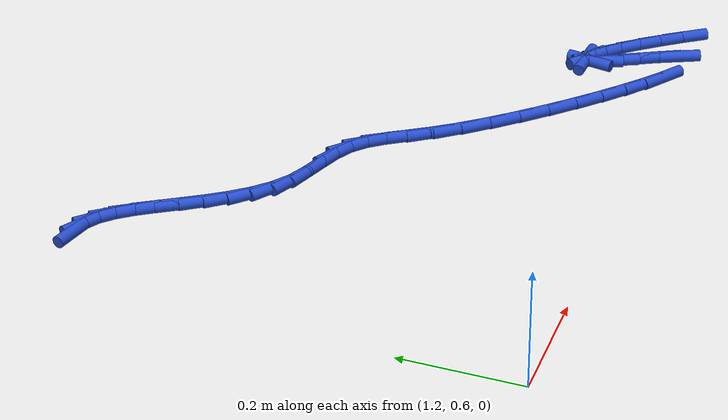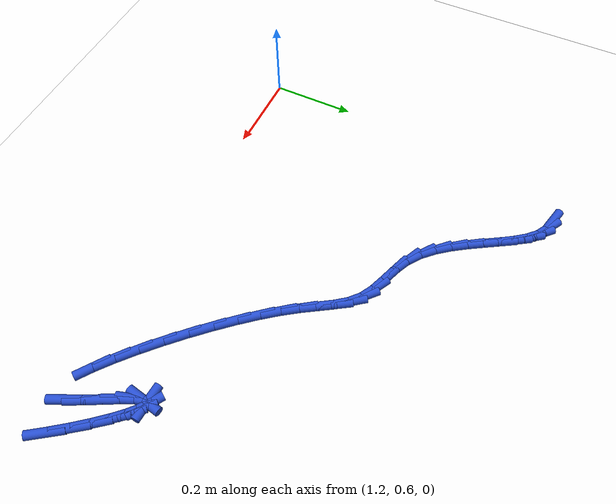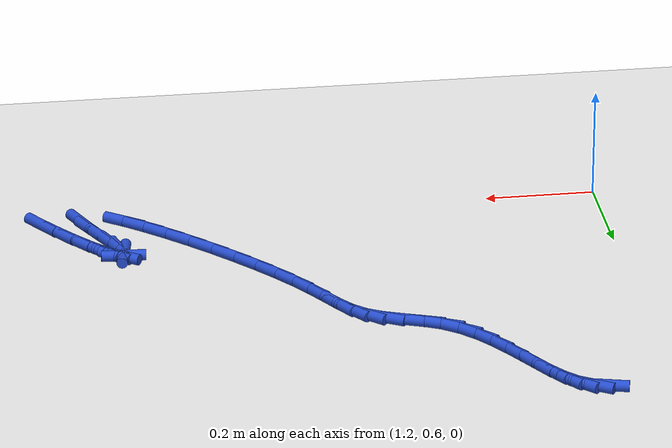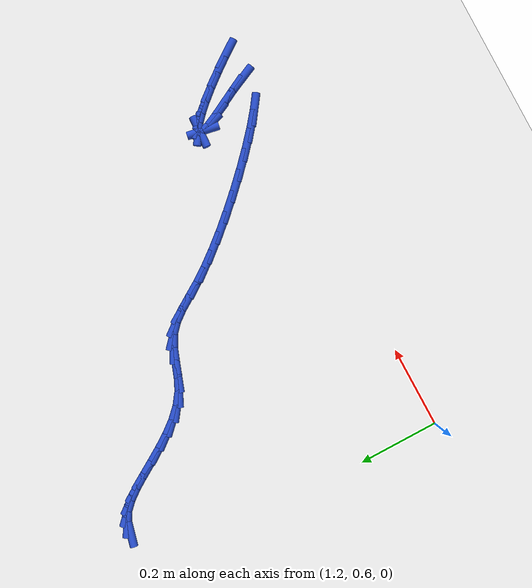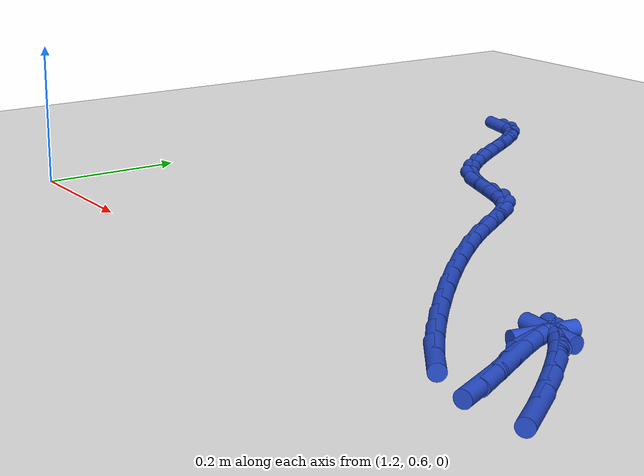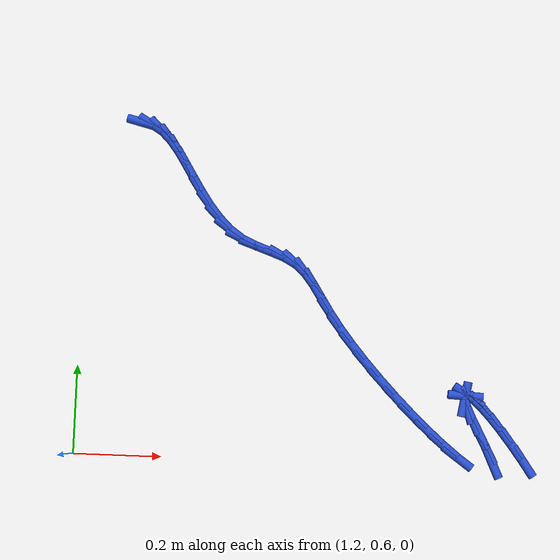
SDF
<sdf version="1.6">
 <world name="default">
  <model name="ground_plane">
   <static>1</static>
   <link name="link">
    <collision name="collision">
     <geometry><plane><normal>0 0 1</normal><size>100 100</size></plane></geometry>
     <surface><friction><ode><mu>100</mu><mu2>50</mu2></ode></friction></surface>
    </collision>
    <visual name="visual">
     <cast_shadows>0</cast_shadows>
     <geometry><plane><normal>0 0 1</normal><size>100 100</size></plane></geometry>
     <material>
      <script><uri>file://media/materials/scripts/gazebo.material</uri><name>Gazebo/WhiteGlow</name></script>
     </material>
    </visual>
   </link>
  </model>
  <model name="line">
   <link name="link_65">
    <pose>1.3244889722268902 1.3648149358747712 0.01 0 1.57 -0.24948968640286232</pose>
    <collision name="collision">
     <geometry><cylinder><radius>0.01</radius><length>0.08</length></cylinder></geometry>
    </collision>
    <visual name="visual">
     <material>
      <script><name>Gazebo/Blue</name><uri>file://media/materials/scripts/gazebo.material</uri></script>
     </material>
     <geometry><cylinder><radius>0.01</radius><length>0.08</length></cylinder></geometry>
    </visual>
   </link>
   <link name="link_66">
    <pose>1.3469288046446897 1.359097302339109 0.01 0 1.57 -0.543616779621756</pose>
    <collision name="collision">
     <geometry><cylinder><radius>0.01</radius><length>0.08</length></cylinder></geometry>
    </collision>
    <visual name="visual">
     <material>
      <script><name>Gazebo/Blue</name><uri>file://media/materials/scripts/gazebo.material</uri></script>
     </material>
     <geometry><cylinder><radius>0.01</radius><length>0.08</length></cylinder></geometry>
    </visual>
   </link>
   <link name="link_67">
    <pose>1.36779480778764 1.3464867941120446 0.01 0 1.57 -0.7815544751937383</pose>
    <collision name="collision">
     <geometry><cylinder><radius>0.01</radius><length>0.08</length></cylinder></geometry>
    </collision>
    <visual name="visual">
     <material>
      <script><name>Gazebo/Blue</name><uri>file://media/materials/scripts/gazebo.material</uri></script>
     </material>
     <geometry><cylinder><radius>0.01</radius><length>0.08</length></cylinder></geometry>
    </visual>
   </link>
   <link name="link_68">
    <pose>1.3873310722021572 1.3271001380047598 0.01 0 1.57 -0.9228962749175372</pose>
    <collision name="collision">
     <geometry><cylinder><radius>0.01</radius><length>0.08</length></cylinder></geometry>
    </collision>
    <visual name="visual">
     <material>
      <script><name>Gazebo/Blue</name><uri>file://media/materials/scripts/gazebo.material</uri></script>
     </material>
     <geometry><cylinder><radius>0.01</radius><length>0.08</length></cylinder></geometry>
    </visual>
   </link>
   <link name="link_69">
    <pose>1.406078440249268 1.3023313924187676 0.01 0 1.57 -0.9971311463169636</pose>
    <collision name="collision">
     <geometry><cylinder><radius>0.01</radius><length>0.08</length></cylinder></geometry>
    </collision>
    <visual name="visual">
     <material>
      <script><name>Gazebo/Blue</name><uri>file://media/materials/scripts/gazebo.material</uri></script>
     </material>
     <geometry><cylinder><radius>0.01</radius><length>0.08</length></cylinder></geometry>
    </visual>
   </link>
   <link name="link_70">
    <pose>1.4245994208024282 1.2736678765863927 0.01 0 1.57 -1.0253156294237578</pose>
    <collision name="collision">
     <geometry><cylinder><radius>0.01</radius><length>0.08</length></cylinder></geometry>
    </collision>
    <visual name="visual">
     <material>
      <script><name>Gazebo/Blue</name><uri>file://media/materials/scripts/gazebo.material</uri></script>
     </material>
     <geometry><cylinder><radius>0.01</radius><length>0.08</length></cylinder></geometry>
    </visual>
   </link>
   <link name="link_71">
    <pose>1.443456522735092 1.2425969097399592 0.01 0 1.57 -1.017580651424875</pose>
    <collision name="collision">
     <geometry><cylinder><radius>0.01</radius><length>0.08</length></cylinder></geometry>
    </collision>
    <visual name="visual">
     <material>
      <script><name>Gazebo/Blue</name><uri>file://media/materials/scripts/gazebo.material</uri></script>
     </material>
     <geometry><cylinder><radius>0.01</radius><length>0.08</length></cylinder></geometry>
    </visual>
   </link>
   <link name="link_72">
    <pose>1.4632122549207132 1.2106058111117899 0.01 0 1.57 -0.9769213736126775</pose>
    <collision name="collision">
     <geometry><cylinder><radius>0.01</radius><length>0.08</length></cylinder></geometry>
    </collision>
    <visual name="visual">
     <material>
      <script><name>Gazebo/Blue</name><uri>file://media/materials/scripts/gazebo.material</uri></script>
     </material>
     <geometry><cylinder><radius>0.01</radius><length>0.08</length></cylinder></geometry>
    </visual>
   </link>
   <link name="link_73">
    <pose>1.4844291262327463 1.1791818999342094 0.01 0 1.57 -0.9013721528112686</pose>
    <collision name="collision">
     <geometry><cylinder><radius>0.01</radius><length>0.08</length></cylinder></geometry>
    </collision>
    <visual name="visual">
     <material>
      <script><name>Gazebo/Blue</name><uri>file://media/materials/scripts/gazebo.material</uri></script>
     </material>
     <geometry><cylinder><radius>0.01</radius><length>0.08</length></cylinder></geometry>
    </visual>
   </link>
   <link name="link_74">
    <pose>1.507669645544646 1.1498124954395406 0.01 0 1.57 -0.7854156332886453</pose>
    <collision name="collision">
     <geometry><cylinder><radius>0.01</radius><length>0.08</length></cylinder></geometry>
    </collision>
    <visual name="visual">
     <material>
      <script><name>Gazebo/Blue</name><uri>file://media/materials/scripts/gazebo.material</uri></script>
     </material>
     <geometry><cylinder><radius>0.01</radius><length>0.08</length></cylinder></geometry>
    </visual>
   </link>
   <link name="link_75">
    <pose>1.5334963217298676 1.1239849168601084 0.01 0 1.57 -0.6225711455977114</pose>
    <collision name="collision">
     <geometry><cylinder><radius>0.01</radius><length>0.08</length></cylinder></geometry>
    </collision>
    <visual name="visual">
     <material>
      <script><name>Gazebo/Blue</name><uri>file://media/materials/scripts/gazebo.material</uri></script>
     </material>
     <geometry><cylinder><radius>0.01</radius><length>0.08</length></cylinder></geometry>
    </visual>
   </link>
   <link name="link_76">
    <pose>1.5624716631783515 1.1031864827021176 0.01 0 1.57 -0.43891997333617555</pose>
    <collision name="collision">
     <geometry><cylinder><radius>0.01</radius><length>0.08</length></cylinder></geometry>
    </collision>
    <visual name="visual">
     <material>
      <script><name>Gazebo/Blue</name><uri>file://media/materials/scripts/gazebo.material</uri></script>
     </material>
     <geometry><cylinder><radius>0.01</radius><length>0.08</length></cylinder></geometry>
    </visual>
   </link>
   <link name="link_77">
    <pose>1.5946188676974309 1.0880945982146644 0.01 0 1.57 -0.34250005749897494</pose>
    <collision name="collision">
     <geometry><cylinder><radius>0.01</radius><length>0.08</length></cylinder></geometry>
    </collision>
    <visual name="visual">
     <material>
      <script><name>Gazebo/Blue</name><uri>file://media/materials/scripts/gazebo.material</uri></script>
     </material>
     <geometry><cylinder><radius>0.01</radius><length>0.08</length></cylinder></geometry>
    </visual>
   </link>
   <link name="link_78">
    <pose>1.6278659835233964 1.0762402638331263 0.01 0 1.57 -0.35704056017298813</pose>
    <collision name="collision">
     <geometry><cylinder><radius>0.01</radius><length>0.08</length></cylinder></geometry>
    </collision>
    <visual name="visual">
     <material>
      <script><name>Gazebo/Blue</name><uri>file://media/materials/scripts/gazebo.material</uri></script>
     </material>
     <geometry><cylinder><radius>0.01</radius><length>0.08</length></cylinder></geometry>
    </visual>
   </link>
   <link name="link_79">
    <pose>1.659632350404784 1.0643905236354068 0.01 0 1.57 -0.49813076466831757</pose>
    <collision name="collision">
     <geometry><cylinder><radius>0.01</radius><length>0.08</length></cylinder></geometry>
    </collision>
    <visual name="visual">
     <material>
      <script><name>Gazebo/Blue</name><uri>file://media/materials/scripts/gazebo.material</uri></script>
     </material>
     <geometry><cylinder><radius>0.01</radius><length>0.08</length></cylinder></geometry>
    </visual>
   </link>
   <link name="link_80">
    <pose>1.6873449093801414 1.0493182763352142 0.01 0 1.57 -0.7351223487382783</pose>
    <collision name="collision">
     <geometry><cylinder><radius>0.01</radius><length>0.08</length></cylinder></geometry>
    </collision>
    <visual name="visual">
     <material>
      <script><name>Gazebo/Blue</name><uri>file://media/materials/scripts/gazebo.material</uri></script>
     </material>
     <geometry><cylinder><radius>0.01</radius><length>0.08</length></cylinder></geometry>
    </visual>
   </link>
   <link name="link_81">
    <pose>1.709897689264707 1.0289263952440504 0.01 0 1.57 -0.9151074802155217</pose>
    <collision name="collision">
     <geometry><cylinder><radius>0.01</radius><length>0.08</length></cylinder></geometry>
    </collision>
    <visual name="visual">
     <material>
      <script><name>Gazebo/Blue</name><uri>file://media/materials/scripts/gazebo.material</uri></script>
     </material>
     <geometry><cylinder><radius>0.01</radius><length>0.08</length></cylinder></geometry>
    </visual>
   </link>
   <link name="link_82">
    <pose>1.729389769618927 1.0035863352976855 0.01 0 1.57 -1.001107841980413</pose>
    <collision name="collision">
     <geometry><cylinder><radius>0.01</radius><length>0.08</length></cylinder></geometry>
    </collision>
    <visual name="visual">
     <material>
      <script><name>Gazebo/Blue</name><uri>file://media/materials/scripts/gazebo.material</uri></script>
     </material>
     <geometry><cylinder><radius>0.01</radius><length>0.08</length></cylinder></geometry>
    </visual>
   </link>
   <link name="link_83">
    <pose>1.7483435154016116 0.9739955726525475 0.01 0 1.57 -1.0073780470392955</pose>
    <collision name="collision">
     <geometry><cylinder><radius>0.01</radius><length>0.08</length></cylinder></geometry>
    </collision>
    <visual name="visual">
     <material>
      <script><name>Gazebo/Blue</name><uri>file://media/materials/scripts/gazebo.material</uri></script>
     </material>
     <geometry><cylinder><radius>0.01</radius><length>0.08</length></cylinder></geometry>
    </visual>
   </link>
   <link name="link_84">
    <pose>1.7692812915715714 0.9408515834650654 0.01 0 1.57 -0.9598930305768948</pose>
    <collision name="collision">
     <geometry><cylinder><radius>0.01</radius><length>0.08</length></cylinder></geometry>
    </collision>
    <visual name="visual">
     <material>
      <script><name>Gazebo/Blue</name><uri>file://media/materials/scripts/gazebo.material</uri></script>
     </material>
     <geometry><cylinder><radius>0.01</radius><length>0.08</length></cylinder></geometry>
    </visual>
   </link>
   <link name="link_85">
    <pose>1.7944791749677402 0.9048681912870554 0.01 0 1.57 -0.9090172277173932</pose>
    <collision name="collision">
     <geometry><cylinder><radius>0.01</radius><length>0.08</length></cylinder></geometry>
    </collision>
    <visual name="visual">
     <material>
      <script><name>Gazebo/Blue</name><uri>file://media/materials/scripts/gazebo.material</uri></script>
     </material>
     <geometry><cylinder><radius>0.01</radius><length>0.08</length></cylinder></geometry>
    </visual>
   </link>
   <link name="link_86">
    <pose>1.8240528220639336 0.8669026177600696 0.01 0 1.57 -0.8695590634977227</pose>
    <collision name="collision">
     <geometry><cylinder><radius>0.01</radius><length>0.08</length></cylinder></geometry>
    </collision>
    <visual name="visual">
     <material>
      <script><name>Gazebo/Blue</name><uri>file://media/materials/scripts/gazebo.material</uri></script>
     </material>
     <geometry><cylinder><radius>0.01</radius><length>0.08</length></cylinder></geometry>
    </visual>
   </link>
   <link name="link_87">
    <pose>1.8569983403884702 0.8278863946843391 0.01 0 1.57 -0.8368136957337593</pose>
    <collision name="collision">
     <geometry><cylinder><radius>0.01</radius><length>0.08</length></cylinder></geometry>
    </collision>
    <visual name="visual">
     <material>
      <script><name>Gazebo/Blue</name><uri>file://media/materials/scripts/gazebo.material</uri></script>
     </material>
     <geometry><cylinder><radius>0.01</radius><length>0.08</length></cylinder></geometry>
    </visual>
   </link>
   <link name="link_88">
    <pose>1.8923023691118148 0.7887516823231726 0.01 0 1.57 -0.8076948305001164</pose>
    <collision name="collision">
     <geometry><cylinder><radius>0.01</radius><length>0.08</length></cylinder></geometry>
    </collision>
    <visual name="visual">
     <material>
      <script><name>Gazebo/Blue</name><uri>file://media/materials/scripts/gazebo.material</uri></script>
     </material>
     <geometry><cylinder><radius>0.01</radius><length>0.08</length></cylinder></geometry>
    </visual>
   </link>
   <link name="link_89">
    <pose>1.9289515474044339 0.7504306409398774 0.01 0 1.57 -0.7798819336224009</pose>
    <collision name="collision">
     <geometry><cylinder><radius>0.01</radius><length>0.08</length></cylinder></geometry>
    </collision>
    <visual name="visual">
     <material>
      <script><name>Gazebo/Blue</name><uri>file://media/materials/scripts/gazebo.material</uri></script>
     </material>
     <geometry><cylinder><radius>0.01</radius><length>0.08</length></cylinder></geometry>
    </visual>
   </link>
   <link name="link_90">
    <pose>1.96593251443679 0.7138554307977619 0.01 0 1.57 -0.7511908256508534</pose>
    <collision name="collision">
     <geometry><cylinder><radius>0.01</radius><length>0.08</length></cylinder></geometry>
    </collision>
    <visual name="visual">
     <material>
      <script><name>Gazebo/Blue</name><uri>file://media/materials/scripts/gazebo.material</uri></script>
     </material>
     <geometry><cylinder><radius>0.01</radius><length>0.08</length></cylinder></geometry>
    </visual>
   </link>
   <link name="link_91">
    <pose>2.0022319093793493 0.679958212160134 0.01 0 1.57 -0.718963581378068</pose>
    <collision name="collision">
     <geometry><cylinder><radius>0.01</radius><length>0.08</length></cylinder></geometry>
    </collision>
    <visual name="visual">
     <material>
      <script><name>Gazebo/Blue</name><uri>file://media/materials/scripts/gazebo.material</uri></script>
     </material>
     <geometry><cylinder><radius>0.01</radius><length>0.08</length></cylinder></geometry>
    </visual>
   </link>
   <link name="link_92">
    <pose>2.036836371402577 0.6496711452903022 0.01 0 1.57 -0.679081011371354</pose>
    <collision name="collision">
     <geometry><cylinder><radius>0.01</radius><length>0.08</length></cylinder></geometry>
    </collision>
    <visual name="visual">
     <material>
      <script><name>Gazebo/Blue</name><uri>file://media/materials/scripts/gazebo.material</uri></script>
     </material>
     <geometry><cylinder><radius>0.01</radius><length>0.08</length></cylinder></geometry>
    </visual>
   </link>
   <link name="link_93">
    <pose>2.0687325396769367 0.6239263904515748 0.01 0 1.57 -0.6236637442712122</pose>
    <collision name="collision">
     <geometry><cylinder><radius>0.01</radius><length>0.08</length></cylinder></geometry>
    </collision>
    <visual name="visual">
     <material>
      <script><name>Gazebo/Blue</name><uri>file://media/materials/scripts/gazebo.material</uri></script>
     </material>
     <geometry><cylinder><radius>0.01</radius><length>0.08</length></cylinder></geometry>
    </visual>
   </link>
   <link name="link_99">
    <pose>2.146513544136977 0.6170168863067343 0.01 0 1.57 -1.147410677020228</pose>
    <collision name="collision">
     <geometry><cylinder><radius>0.01</radius><length>0.08</length></cylinder></geometry>
    </collision>
    <visual name="visual">
     <material>
      <script><name>Gazebo/Blue</name><uri>file://media/materials/scripts/gazebo.material</uri></script>
     </material>
     <geometry><cylinder><radius>0.01</radius><length>0.08</length></cylinder></geometry>
    </visual>
   </link>
   <link name="link_100">
    <pose>2.133055802047664 0.646880536903684 0.01 0 1.57 -1.098142254481773</pose>
    <collision name="collision">
     <geometry><cylinder><radius>0.01</radius><length>0.08</length></cylinder></geometry>
    </collision>
    <visual name="visual">
     <material>
      <script><name>Gazebo/Blue</name><uri>file://media/materials/scripts/gazebo.material</uri></script>
     </material>
     <geometry><cylinder><radius>0.01</radius><length>0.08</length></cylinder></geometry>
    </visual>
   </link>
   <link name="link_101">
    <pose>2.115802269322939 0.680624363336891 0.01 0 1.57 -1.0942859305780233</pose>
    <collision name="collision">
     <geometry><cylinder><radius>0.01</radius><length>0.08</length></cylinder></geometry>
    </collision>
    <visual name="visual">
     <material>
      <script><name>Gazebo/Blue</name><uri>file://media/materials/scripts/gazebo.material</uri></script>
     </material>
     <geometry><cylinder><radius>0.01</radius><length>0.08</length></cylinder></geometry>
    </visual>
   </link>
   <link name="link_102">
    <pose>2.0991019637999044 0.7129777935757197 0.01 0 1.57 -1.1392249426378287</pose>
    <collision name="collision">
     <geometry><cylinder><radius>0.01</radius><length>0.08</length></cylinder></geometry>
    </collision>
    <visual name="visual">
     <material>
      <script><name>Gazebo/Blue</name><uri>file://media/materials/scripts/gazebo.material</uri></script>
     </material>
     <geometry><cylinder><radius>0.01</radius><length>0.08</length></cylinder></geometry>
    </visual>
   </link>
   <link name="link_103">
    <pose>2.0872305249874774 0.7387558881019959 0.01 0 1.57 -1.279096027633235</pose>
    <collision name="collision">
     <geometry><cylinder><radius>0.01</radius><length>0.08</length></cylinder></geometry>
    </collision>
    <visual name="visual">
     <material>
      <script><name>Gazebo/Blue</name><uri>file://media/materials/scripts/gazebo.material</uri></script>
     </material>
     <geometry><cylinder><radius>0.01</radius><length>0.08</length></cylinder></geometry>
    </visual>
   </link>
   <link name="link_104">
    <pose>2.0822435249752345 0.7553645261807754 0.01 0 1.57 1.3953218204497277</pose>
    <collision name="collision">
     <geometry><cylinder><radius>0.01</radius><length>0.08</length></cylinder></geometry>
    </collision>
    <visual name="visual">
     <material>
      <script><name>Gazebo/Blue</name><uri>file://media/materials/scripts/gazebo.material</uri></script>
     </material>
     <geometry><cylinder><radius>0.01</radius><length>0.08</length></cylinder></geometry>
    </visual>
   </link>
   <link name="link_105">
    <pose>2.083632964788153 0.7632012746305934 0.01 0 1.57 -0.052128278619345436</pose>
    <collision name="collision">
     <geometry><cylinder><radius>0.01</radius><length>0.08</length></cylinder></geometry>
    </collision>
    <visual name="visual">
     <material>
      <script><name>Gazebo/Blue</name><uri>file://media/materials/scripts/gazebo.material</uri></script>
     </material>
     <geometry><cylinder><radius>0.01</radius><length>0.08</length></cylinder></geometry>
    </visual>
   </link>
   <link name="link_106">
    <pose>2.09074832035731 0.7628300270612945 0.01 0 1.57 -0.5816257732908231</pose>
    <collision name="collision">
     <geometry><cylinder><radius>0.01</radius><length>0.08</length></cylinder></geometry>
    </collision>
    <visual name="visual">
     <material>
      <script><name>Gazebo/Blue</name><uri>file://media/materials/scripts/gazebo.material</uri></script>
     </material>
     <geometry><cylinder><radius>0.01</radius><length>0.08</length></cylinder></geometry>
    </visual>
   </link>
   <link name="link_107">
    <pose>2.1029390676137845 0.7548146770827261 0.01 0 1.57 -0.7375004254737567</pose>
    <collision name="collision">
     <geometry><cylinder><radius>0.01</radius><length>0.08</length></cylinder></geometry>
    </collision>
    <visual name="visual">
     <material>
      <script><name>Gazebo/Blue</name><uri>file://media/materials/scripts/gazebo.material</uri></script>
     </material>
     <geometry><cylinder><radius>0.01</radius><length>0.08</length></cylinder></geometry>
    </visual>
   </link>
   <link name="link_108">
    <pose>2.1195546824886535 0.7397191183047334 0.01 0 1.57 -0.8144819182985862</pose>
    <collision name="collision">
     <geometry><cylinder><radius>0.01</radius><length>0.08</length></cylinder></geometry>
    </collision>
    <visual name="visual">
     <material>
      <script><name>Gazebo/Blue</name><uri>file://media/materials/scripts/gazebo.material</uri></script>
     </material>
     <geometry><cylinder><radius>0.01</radius><length>0.08</length></cylinder></geometry>
    </visual>
   </link>
   <link name="link_109">
    <pose>2.139944640912995 0.718107244337162 0.01 0 1.57 -0.8645330759963723</pose>
    <collision name="collision">
     <geometry><cylinder><radius>0.01</radius><length>0.08</length></cylinder></geometry>
    </collision>
    <visual name="visual">
     <material>
      <script><name>Gazebo/Blue</name><uri>file://media/materials/scripts/gazebo.material</uri></script>
     </material>
     <geometry><cylinder><radius>0.01</radius><length>0.08</length></cylinder></geometry>
    </visual>
   </link>
   <link name="link_110">
    <pose>2.163458418817886 0.6905429487898582 0.01 0 1.57 -0.9030364428914875</pose>
    <collision name="collision">
     <geometry><cylinder><radius>0.01</radius><length>0.08</length></cylinder></geometry>
    </collision>
    <visual name="visual">
     <material>
      <script><name>Gazebo/Blue</name><uri>file://media/materials/scripts/gazebo.material</uri></script>
     </material>
     <geometry><cylinder><radius>0.01</radius><length>0.08</length></cylinder></geometry>
    </visual>
   </link>
   <link name="link_111">
    <pose>2.189445492134407 0.6575901252726681 0.01 0 1.57 -0.9362188348726279</pose>
    <collision name="collision">
     <geometry><cylinder><radius>0.01</radius><length>0.08</length></cylinder></geometry>
    </collision>
    <visual name="visual">
     <material>
      <script><name>Gazebo/Blue</name><uri>file://media/materials/scripts/gazebo.material</uri></script>
     </material>
     <geometry><cylinder><radius>0.01</radius><length>0.08</length></cylinder></geometry>
    </visual>
   </link>
   <link name="link_112">
    <pose>2.2172553367936336 0.6198126673954372 0.01 0 1.57 -0.9672044953026869</pose>
    <collision name="collision">
     <geometry><cylinder><radius>0.01</radius><length>0.08</length></cylinder></geometry>
    </collision>
    <visual name="visual">
     <material>
      <script><name>Gazebo/Blue</name><uri>file://media/materials/scripts/gazebo.material</uri></script>
     </material>
     <geometry><cylinder><radius>0.01</radius><length>0.08</length></cylinder></geometry>
    </visual>
   </link>
  </model>
 </world>
</sdf>
